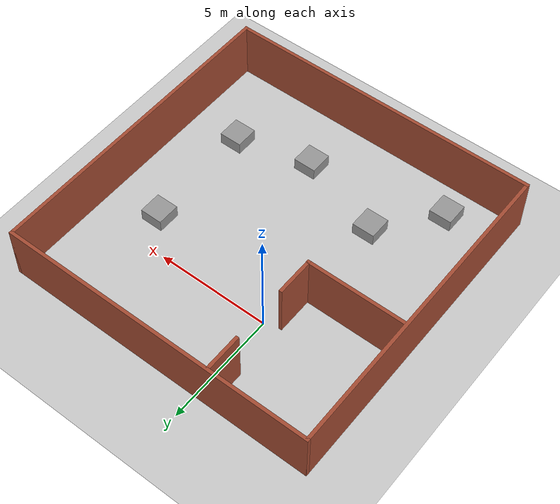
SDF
<sdf version="1.7">
 <world name="default">
  <light name="sun" type="directional">
   <pose>0 0 10 0 -0 0</pose>
   <diffuse>0.8 0.8 0.8 1</diffuse>
   <specular>0.2 0.2 0.2 1</specular>
   <attenuation>
    <range>1000</range>
    <constant>0.9</constant>
    <linear>0.01</linear>
    <quadratic>0.001</quadratic>
   </attenuation>
   <direction>-0.5 0.1 -0.9</direction>
   <spot><inner_angle>0</inner_angle><outer_angle>0</outer_angle><falloff>0</falloff></spot>
  </light>
  <model name="ground_plane">
   <static>1</static>
   <link name="link">
    <collision name="collision">
     <geometry><plane><normal>0 0 1</normal><size>100 100</size></plane></geometry>
     <surface>
      <contact><collide_bitmask>65535</collide_bitmask></contact>
      <friction><ode><mu>100</mu><mu2>50</mu2></ode></friction>
     </surface>
    </collision>
    <visual name="visual">
     <cast_shadows>0</cast_shadows>
     <geometry><plane><normal>0 0 1</normal><size>100 100</size></plane></geometry>
     <material>
      <script><uri>file://media/materials/scripts/gazebo.material</uri><name>Gazebo/Grey</name></script>
     </material>
    </visual>
   </link>
  </model>
  <gravity>0 0 -9.8</gravity>
  <magnetic_field>6e-06 2.3e-05 -4.2e-05</magnetic_field>
  <atmosphere type="adiabatic"/>
  <physics type="ode">
   <max_step_size>0.001</max_step_size>
   <real_time_factor>1</real_time_factor>
   <real_time_update_rate>1000</real_time_update_rate>
  </physics>
  <scene><ambient>0.4 0.4 0.4 1</ambient><background>0.7 0.7 0.7 1</background><shadows>1</shadows></scene>
  <audio><device>default</device></audio>
  <spherical_coordinates>
   <surface_model>EARTH_WGS84</surface_model>
   <latitude_deg>0</latitude_deg>
   <longitude_deg>0</longitude_deg>
   <elevation>0</elevation>
   <heading_deg>0</heading_deg>
  </spherical_coordinates>
  <model name="new-cafe">
   <pose>1.91244 -3.01905 0 0 -0 0</pose>
   <link name="Wall_0">
    <collision name="Wall_0_Collision">
     <geometry><box><size>14 0.15 2.5</size></box></geometry>
     <pose>0 0 1.25 0 -0 0</pose>
    </collision>
    <visual name="Wall_0_Visual">
     <pose>0 0 1.25 0 -0 0</pose>
     <geometry><box><size>14 0.15 2.5</size></box></geometry>
     <material>
      <script><uri>file://media/materials/scripts/gazebo.material</uri><name>Gazebo/Bricks</name></script>
      <ambient>0.333333 0 0 1</ambient>
     </material>
     <meta><layer>0</layer></meta>
    </visual>
    <pose>-0 6.925 0 0 -0 0</pose>
   </link>
   <link name="Wall_12">
    <collision name="Wall_12_Collision">
     <geometry><box><size>1.75 0.15 2.5</size></box></geometry>
     <pose>0 0 1.25 0 -0 0</pose>
    </collision>
    <visual name="Wall_12_Visual">
     <pose>0 0 1.25 0 -0 0</pose>
     <geometry><box><size>1.75 0.15 2.5</size></box></geometry>
     <material>
      <script><uri>file://media/materials/scripts/gazebo.material</uri><name>Gazebo/Bricks</name></script>
      <ambient>0.333333 0 0 1</ambient>
     </material>
     <meta><layer>0</layer></meta>
    </visual>
    <pose>-2.55894 1.94385 0 0 -0 1.5708</pose>
   </link>
   <link name="Wall_15">
    <collision name="Wall_15_Collision">
     <geometry><box><size>1.75 0.15 2.5</size></box></geometry>
     <pose>0 0 1.25 0 -0 0</pose>
    </collision>
    <visual name="Wall_15_Visual">
     <pose>0 0 1.25 0 -0 0</pose>
     <geometry><box><size>1.75 0.15 2.5</size></box></geometry>
     <material>
      <script><uri>file://media/materials/scripts/gazebo.material</uri><name>Gazebo/Bricks</name></script>
      <ambient>0.333333 0 0 1</ambient>
     </material>
     <meta><layer>0</layer></meta>
    </visual>
    <pose>-2.56949 6.12292 0 0 -0 -1.5708</pose>
   </link>
   <link name="Wall_3">
    <collision name="Wall_3_Collision">
     <geometry><box><size>14 0.15 2.5</size></box></geometry>
     <pose>0 0 1.25 0 -0 0</pose>
    </collision>
    <visual name="Wall_3_Visual">
     <pose>0 0 1.25 0 -0 0</pose>
     <geometry><box><size>14 0.15 2.5</size></box></geometry>
     <material>
      <script><uri>file://media/materials/scripts/gazebo.material</uri><name>Gazebo/Bricks</name></script>
      <ambient>0.333333 0 0 1</ambient>
     </material>
     <meta><layer>0</layer></meta>
    </visual>
    <pose>6.925 0 0 0 -0 -1.5708</pose>
   </link>
   <link name="Wall_5">
    <collision name="Wall_5_Collision">
     <geometry><box><size>14 0.15 2.5</size></box></geometry>
     <pose>0 0 1.25 0 -0 0</pose>
    </collision>
    <visual name="Wall_5_Visual">
     <pose>0 0 1.25 0 -0 0</pose>
     <geometry><box><size>14 0.15 2.5</size></box></geometry>
     <material>
      <script><uri>file://media/materials/scripts/gazebo.material</uri><name>Gazebo/Bricks</name></script>
      <ambient>0.333333 0 0 1</ambient>
     </material>
     <meta><layer>0</layer></meta>
    </visual>
    <pose>-0 -6.925 0 0 -0 3.14159</pose>
   </link>
   <link name="Wall_7">
    <collision name="Wall_7_Collision">
     <geometry><box><size>14 0.15 2.5</size></box></geometry>
     <pose>0 0 1.25 0 -0 0</pose>
    </collision>
    <visual name="Wall_7_Visual">
     <pose>0 0 1.25 0 -0 0</pose>
     <geometry><box><size>14 0.15 2.5</size></box></geometry>
     <material>
      <script><uri>file://media/materials/scripts/gazebo.material</uri><name>Gazebo/Bricks</name></script>
      <ambient>0.333333 0 0 1</ambient>
     </material>
     <meta><layer>0</layer></meta>
    </visual>
    <pose>-6.925 0 0 0 -0 -1.5708</pose>
   </link>
   <link name="Wall_9">
    <collision name="Wall_9_Collision">
     <geometry><box><size>4.5 0.15 2.5</size></box></geometry>
     <pose>0 0 1.25 0 -0 0</pose>
    </collision>
    <visual name="Wall_9_Visual">
     <pose>0 0 1.25 0 -0 0</pose>
     <geometry><box><size>4.5 0.15 2.5</size></box></geometry>
     <material>
      <script><uri>file://media/materials/scripts/gazebo.material</uri><name>Gazebo/Bricks</name></script>
      <ambient>0.333333 0 0 1</ambient>
     </material>
     <meta><layer>0</layer></meta>
    </visual>
    <pose>-4.73394 1.14385 0 0 -0 0</pose>
   </link>
   <static>1</static>
  </model>
  <light name="user_directional_light_0" type="directional">
   <pose>-5.49381 3.96953 1 0 -0 0</pose>
   <diffuse>0.5 0.5 0.5 1</diffuse>
   <specular>0.1 0.1 0.1 1</specular>
   <direction>0.1 0.1 -0.9</direction>
   <attenuation>
    <range>20</range>
    <constant>0.5</constant>
    <linear>0.01</linear>
    <quadratic>0.001</quadratic>
   </attenuation>
   <spot><inner_angle>0</inner_angle><outer_angle>0</outer_angle><falloff>0</falloff></spot>
  </light>
  <light name="user_directional_light_1" type="directional">
   <pose>9.95709 4.2979 1 0 -0 0</pose>
   <diffuse>0.5 0.5 0.5 1</diffuse>
   <specular>0.1 0.1 0.1 1</specular>
   <direction>0.1 0.1 -0.9</direction>
   <attenuation>
    <range>20</range>
    <constant>0.5</constant>
    <linear>0.01</linear>
    <quadratic>0.001</quadratic>
   </attenuation>
   <spot><inner_angle>0</inner_angle><outer_angle>0</outer_angle><falloff>0</falloff></spot>
  </light>
  <light name="user_directional_light_2" type="directional">
   <pose>-7.45628 -9.36552 1 0 -0 0</pose>
   <diffuse>0.5 0.5 0.5 1</diffuse>
   <specular>0.1 0.1 0.1 1</specular>
   <direction>0.1 0.1 -0.9</direction>
   <attenuation>
    <range>20</range>
    <constant>0.5</constant>
    <linear>0.01</linear>
    <quadratic>0.001</quadratic>
   </attenuation>
   <spot><inner_angle>0</inner_angle><outer_angle>0</outer_angle><falloff>0</falloff></spot>
  </light>
  <light name="user_directional_light_3" type="directional">
   <pose>9.94864 -9.15281 1 0 -0 0</pose>
   <diffuse>0.5 0.5 0.5 1</diffuse>
   <specular>0.1 0.1 0.1 1</specular>
   <direction>0.1 0.1 -0.9</direction>
   <attenuation>
    <range>20</range>
    <constant>0.5</constant>
    <linear>0.01</linear>
    <quadratic>0.001</quadratic>
   </attenuation>
   <spot><inner_angle>0</inner_angle><outer_angle>0</outer_angle><falloff>0</falloff></spot>
  </light>
  <light name="user_spot_light_0" type="spot">
   <pose>-0.969059 -4.54094 1 0 -0 0</pose>
   <diffuse>0.5 0.5 0.5 1</diffuse>
   <specular>0.1 0.1 0.1 1</specular>
   <direction>0 0 -1</direction>
   <attenuation>
    <range>20</range>
    <constant>0.5</constant>
    <linear>0.01</linear>
    <quadratic>0.001</quadratic>
   </attenuation>
   <cast_shadows>0</cast_shadows>
   <spot><inner_angle>0.6</inner_angle><outer_angle>1</outer_angle><falloff>1</falloff></spot>
  </light>
  <light name="user_directional_light_4" type="directional">
   <pose>3.49978 -0.474043 1 0 -0 0</pose>
   <diffuse>0.5 0.5 0.5 1</diffuse>
   <specular>0.1 0.1 0.1 1</specular>
   <direction>0.1 0.1 -0.9</direction>
   <attenuation>
    <range>20</range>
    <constant>0.5</constant>
    <linear>0.01</linear>
    <quadratic>0.001</quadratic>
   </attenuation>
   <spot><inner_angle>0</inner_angle><outer_angle>0</outer_angle><falloff>0</falloff></spot>
  </light>
  <model name="unit_box_clone">
   <pose>3.26063 -7.26702 0.277809 0 -0 0</pose>
   <link name="link">
    <inertial>
     <mass>1</mass>
     <inertia>
      <ixx>0.166667</ixx>
      <ixy>0</ixy>
      <ixz>0</ixz>
      <iyy>0.166667</iyy>
      <iyz>0</iyz>
      <izz>0.166667</izz>
     </inertia>
    </inertial>
    <collision name="collision"><geometry><box><size>1 1 0.555618</size></box></geometry></collision>
    <visual name="visual">
     <geometry><box><size>1 1 0.555618</size></box></geometry>
     <material>
      <script><name>Gazebo/Grey</name><uri>file://media/materials/scripts/gazebo.material</uri></script>
     </material>
    </visual>
   </link>
  </model>
  <model name="unit_box_clone_0">
   <pose>6.51771 -6.46992 0.277809 0 -0 0</pose>
   <link name="link">
    <inertial>
     <mass>1</mass>
     <inertia>
      <ixx>0.166667</ixx>
      <ixy>0</ixy>
      <ixz>0</ixz>
      <iyy>0.166667</iyy>
      <iyz>0</iyz>
      <izz>0.166667</izz>
     </inertia>
    </inertial>
    <collision name="collision"><geometry><box><size>1 1 0.555618</size></box></geometry></collision>
    <visual name="visual">
     <geometry><box><size>1 1 0.555618</size></box></geometry>
     <material>
      <script><name>Gazebo/Grey</name><uri>file://media/materials/scripts/gazebo.material</uri></script>
     </material>
    </visual>
   </link>
  </model>
  <model name="unit_box_clone_1">
   <pose>-2.561 -8.48288 0.277809 0 -0 0</pose>
   <link name="link">
    <inertial>
     <mass>1</mass>
     <inertia>
      <ixx>0.166667</ixx>
      <ixy>0</ixy>
      <ixz>0</ixz>
      <iyy>0.166667</iyy>
      <iyz>0</iyz>
      <izz>0.166667</izz>
     </inertia>
    </inertial>
    <collision name="collision"><geometry><box><size>1 1 0.555618</size></box></geometry></collision>
    <visual name="visual">
     <geometry><box><size>1 1 0.555618</size></box></geometry>
     <material>
      <script><name>Gazebo/Grey</name><uri>file://media/materials/scripts/gazebo.material</uri></script>
     </material>
    </visual>
   </link>
  </model>
  <model name="unit_box_clone_2">
   <pose>6.40595 -1.40753 0.277809 0 -0 0</pose>
   <link name="link">
    <inertial>
     <mass>1</mass>
     <inertia>
      <ixx>0.166667</ixx>
      <ixy>0</ixy>
      <ixz>0</ixz>
      <iyy>0.166667</iyy>
      <iyz>0</iyz>
      <izz>0.166667</izz>
     </inertia>
    </inertial>
    <collision name="collision"><geometry><box><size>1 1 0.555618</size></box></geometry></collision>
    <visual name="visual">
     <geometry><box><size>1 1 0.555618</size></box></geometry>
     <material>
      <script><name>Gazebo/Grey</name><uri>file://media/materials/scripts/gazebo.material</uri></script>
     </material>
    </visual>
   </link>
  </model>
  <model name="unit_box_clone_clone">
   <pose>-0.570807 -6.04822 0.277809 0 -0 0</pose>
   <link name="link">
    <inertial>
     <mass>1</mass>
     <inertia>
      <ixx>0.166667</ixx>
      <ixy>0</ixy>
      <ixz>0</ixz>
      <iyy>0.166667</iyy>
      <iyz>0</iyz>
      <izz>0.166667</izz>
     </inertia>
    </inertial>
    <collision name="collision"><geometry><box><size>1 1 0.555618</size></box></geometry></collision>
    <visual name="visual">
     <geometry><box><size>1 1 0.555618</size></box></geometry>
     <material>
      <script><name>Gazebo/Grey</name><uri>file://media/materials/scripts/gazebo.material</uri></script>
     </material>
    </visual>
   </link>
  </model>
 </world>
</sdf>
